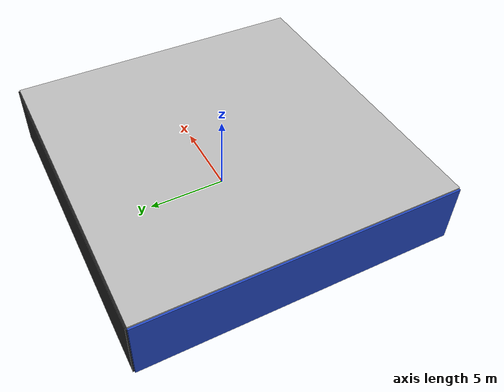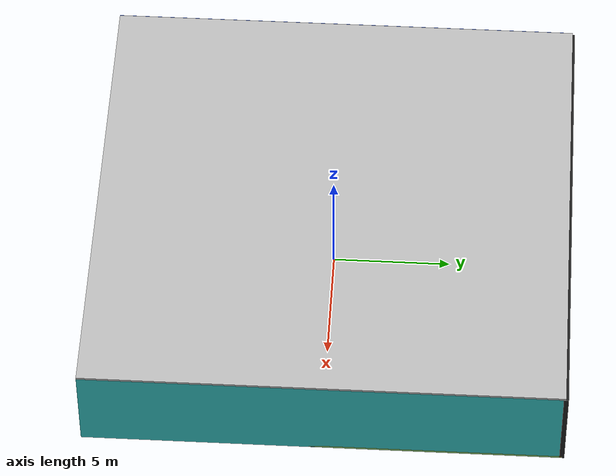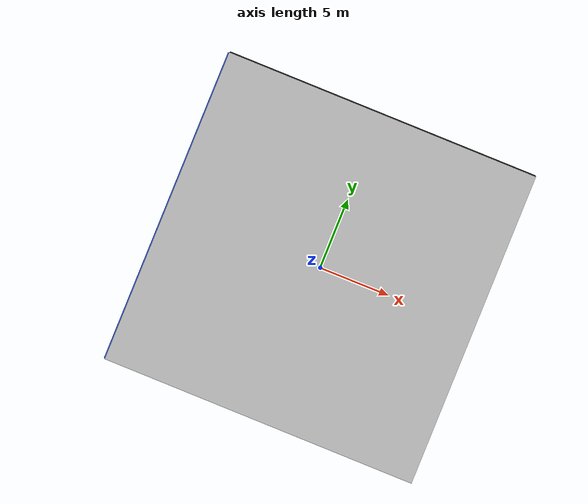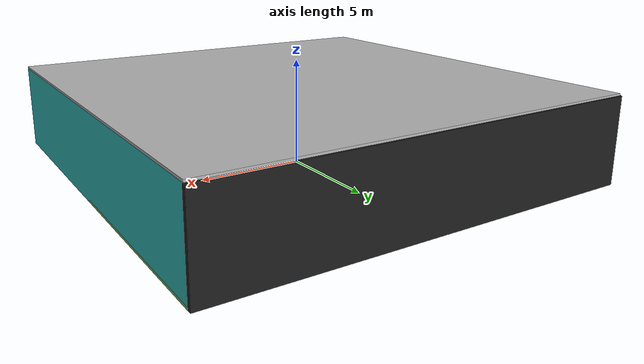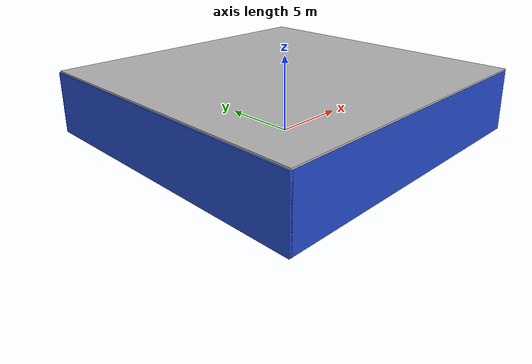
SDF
<sdf version="1.4">
 <world name="default">
  <physics type="ode">
   <max_step_size>0.001</max_step_size>
   <real_time_factor>1</real_time_factor>
   <real_time_update_rate>1000</real_time_update_rate>
   <gravity>0 0 -9.8</gravity>
  </physics>
  <scene><ambient>0.4 0.4 0.4 1</ambient><background>0.7 0.7 0.7 1</background><shadows>1</shadows></scene>
  <model name="Surrounding">
   <static>1</static>
   <link name="Ceiling">
    <collision name="Ceiling_Collision"><geometry><box><size>20 20 0.1</size></box></geometry></collision>
    <visual name="Ceiling_Visual">
     <geometry><box><size>20 20 0.1</size></box></geometry>
     <material>
      <script><uri>file://media/materials/scripts/gazebo.material</uri><name>Gazebo/LightOff</name></script>
     </material>
    </visual>
    <pose>0 0 4.05 0 0 0</pose>
   </link>
   <link name="Wall_South">
    <collision name="Wall_South_Collision">
     <geometry><box><size>20 0 4</size></box></geometry>
     <pose>0 0 2 0 -0 0</pose>
    </collision>
    <visual name="Wall_South_Visual">
     <pose>0 0 2 0 -0 0</pose>
     <geometry><box><size>20 0 4</size></box></geometry>
     <material>
      <script><uri>file://media/materials/scripts/gazebo.material</uri><name>Gazebo/BlueGlow</name></script>
     </material>
    </visual>
    <velocity_decay><linear>0</linear><angular>0</angular></velocity_decay>
    <pose>0 -10 0 0 -0 0</pose>
   </link>
   <link name="Wall_East">
    <collision name="Wall_21_Collision">
     <geometry><box><size>20 0 4</size></box></geometry>
     <pose>0 0 2 0 -0 0</pose>
    </collision>
    <visual name="Wall_21_Visual">
     <pose>0 0 2 0 -0 0</pose>
     <geometry><box><size>20 0 4</size></box></geometry>
     <material>
      <script>
       <uri>file://media/materials/scripts/gazebo.material</uri>
       <name>Gazebo/TurquoiseGlowOutline</name>
      </script>
     </material>
    </visual>
    <velocity_decay><linear>0</linear><angular>0</angular></velocity_decay>
    <pose>10 0 0 0 -0 1.5708</pose>
   </link>
   <link name="Wall_North">
    <collision name="Wall_22_Collision">
     <geometry><box><size>20 0.2 4</size></box></geometry>
     <pose>0 0 2 0 -0 0</pose>
    </collision>
    <visual name="Wall_22_Visual">
     <pose>0 0 2 0 -0 0</pose>
     <geometry><box><size>20 0.2 4</size></box></geometry>
     <material>
      <script><uri>file://media/materials/scripts/gazebo.material</uri><name>Gazebo/FlatBlack</name></script>
     </material>
    </visual>
    <velocity_decay><linear>0</linear><angular>0</angular></velocity_decay>
    <pose>0 10 0 0 -0 0</pose>
   </link>
   <link name="Wall_West">
    <collision name="Wall_23_Collision">
     <geometry><box><size>20 0.2 4</size></box></geometry>
     <pose>0 0 2 0 -0 0</pose>
    </collision>
    <visual name="Wall_23_Visual">
     <pose>0 0 2 0 -0 0</pose>
     <geometry><box><size>20 0.2 4</size></box></geometry>
     <material>
      <script><uri>file://media/materials/scripts/gazebo.material</uri><name>Gazebo/BlueGlow</name></script>
     </material>
    </visual>
    <velocity_decay><linear>0</linear><angular>0</angular></velocity_decay>
    <pose>-10 0 0 0 0 -1.5708</pose>
   </link>
   <link name="Ground_link">
    <collision name="collision">
     <pose>0 0 .05 0 -0 0</pose>
     <geometry><box><size>20 20 0.1</size></box></geometry>
    </collision>
    <visual name="visual">
     <pose>0 0 .05 0 -0 0</pose>
     <geometry><box><size>20 20 0.1</size></box></geometry>
     <material>
      <script>
       <uri>file://media/materials/scripts/gazebo.material</uri>
       <name>Gazebo/YellowTransparent</name>
      </script>
     </material>
    </visual>
   </link>
   <static>1</static>
  </model>
  <spherical_coordinates>
   <surface_model>EARTH_WGS84</surface_model>
   <latitude_deg>0</latitude_deg>
   <longitude_deg>0</longitude_deg>
   <elevation>0</elevation>
   <heading_deg>0</heading_deg>
  </spherical_coordinates>
  <light name="lightball_0" type="diffuse">
   <diffuse>0.8 0.8 0.8 1</diffuse>
   <specular>0.2 0.2 0.2 1</specular>
   <attenuation>
    <range>100</range>
    <constant>0.7</constant>
    <linear>0.01</linear>
    <quadratic>0.001</quadratic>
   </attenuation>
   <direction>-0.5 0.1 -0.9</direction>
   <pose>7.54568568409 6.89572495631 3.35121479193 0 0 0</pose>
  </light>
  <light name="lightball_1" type="diffuse">
   <diffuse>0.8 0.8 0.8 1</diffuse>
   <specular>0.2 0.2 0.2 1</specular>
   <attenuation>
    <range>100</range>
    <constant>0.7</constant>
    <linear>0.01</linear>
    <quadratic>0.001</quadratic>
   </attenuation>
   <direction>-0.5 0.1 -0.9</direction>
   <pose>2.89347564351 -5.69020024793 2.23682096653 0 0 0</pose>
  </light>
  <light name="lightball_2" type="diffuse">
   <diffuse>0.8 0.8 0.8 1</diffuse>
   <specular>0.2 0.2 0.2 1</specular>
   <attenuation>
    <range>100</range>
    <constant>0.7</constant>
    <linear>0.01</linear>
    <quadratic>0.001</quadratic>
   </attenuation>
   <direction>-0.5 0.1 -0.9</direction>
   <pose>0.362333547101 8.89949564442 0.824017905479 0 0 0</pose>
  </light>
  <include>
   <uri>model://textured_shapes</uri>
   <pose>-1.79151896057 -8.29691427055 0 0 0 1.37422082159</pose>
  </include>
  <include><uri>model://cabinet</uri><pose>0.850670791475 0.870964793746 0 0 0 2.95221853948</pose></include>
  <include>
   <uri>model://textured_shapes</uri>
   <pose>2.10649116618 4.84736383541 0 0 0 1.8970433559</pose>
  </include>
  <include>
   <uri>model://construction_cone</uri>
   <pose>1.90225876561 7.49639040677 0 0 0 0.433453325296</pose>
  </include>
  <include><uri>model://table</uri><pose>3.79266085354 4.85158311637 0 0 0 2.27579455369</pose></include>
 </world>
</sdf>

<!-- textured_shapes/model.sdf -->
<sdf version="1.6">
  <model name="textured_shapes">
    <pose>0 0 0.5 0 0 0</pose>
    <link name="box">
      <pose>0 -1.5 0 0 0 0</pose>
      <collision name="collision">
        <geometry>
          <box>
            <size>1 1 1</size>
          </box>
        </geometry>
      </collision>
      <visual name="visual">
        <geometry>
          <box>
            <size>1 1 1</size>
          </box>
        </geometry>
        <material>
          <script>
            <uri>model://../model_source/models/textured_shapes/materials/scripts</uri>
            <uri>model://../model_source/models/textured_shapes/materials/textures</uri>
            <name>TexturedShape/Squares</name>
          </script>
        </material>
      </visual>
    </link>
    <link name="sphere">
      <collision name="collision">
        <geometry>
          <sphere>
            <radius>0.5</radius>
          </sphere>
        </geometry>
      </collision>
      <visual name="visual">
        <geometry>
          <sphere>
            <radius>0.5</radius>
          </sphere>
        </geometry>
        <material>
          <script>
            <uri>model://../model_source/models/textured_shapes/materials/scripts</uri>
            <uri>model://../model_source/models/textured_shapes/materials/textures</uri>
            <name>TexturedShape/Squares</name>
          </script>
        </material>
      </visual>
    </link>
    <link name="cylinder">
      <pose>0 1.5 0 0 0 0</pose>
      <collision name="collision">
        <geometry>
          <cylinder>
            <radius>0.5</radius>
            <length>1</length>
          </cylinder>
        </geometry>
      </collision>
      <visual name="visual">
        <geometry>
          <cylinder>
            <radius>0.5</radius>
            <length>1</length>
          </cylinder>
        </geometry>
        <material>
          <script>
            <uri>model://../model_source/models/textured_shapes/materials/scripts</uri>
            <uri>model://../model_source/models/textured_shapes/materials/textures</uri>
            <name>TexturedShape/Squares</name>
          </script>
        </material>
      </visual>
    </link>
  </model>
</sdf>

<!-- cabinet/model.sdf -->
<sdf version="1.5">
  <model name="cabinet">
    <static>true</static>
    <link name="cabinet_bottom_plate">
      <inertial>
        <pose>0 0 -1 0 0 0</pose>
        <inertia>
          <ixx>2.050000</ixx>
          <ixy>0</ixy>
          <ixz>0</ixz>
          <iyy>2.050000</iyy>
          <iyz>0</iyz>
          <izz>2.050000</izz>
        </inertia>
        <mass>25.000000</mass>
      </inertial>
      <collision name="cabinet_bottom_plate_geom">
        <pose>0 0 0.010000 0 0 0</pose>
        <geometry>
          <box>
            <size>0.450000 0.450000 0.020000</size>
          </box>
        </geometry>
      </collision>
      <visual name="cabinet_bottom_plate_geom_visual">
        <pose>0 0 0.010000 0 0 0</pose>
        <geometry>
          <box>
            <size>0.450000 0.450000 0.020000</size>
          </box>
        </geometry>
        <material>
          <script>
            <uri>model://media/materials/scripts/gazebo.material</uri>
            <name>Gazebo/Wood</name>
          </script>
        </material>
      </visual>
      <collision name="cabinet_bottom_plate_geom_cabinet_back_plate">
        <pose>0.235000 0 0.510000 0 0 0</pose>
        <geometry>
          <box>
            <size>0.020000 0.450000 1.020000</size>
          </box>
        </geometry>
      </collision>
      <visual name="cabinet_bottom_plate_geom_cabinet_back_plate_visual">
        <pose>0.235000 0 0.510000 0 0 0</pose>
        <geometry>
          <box>
            <size>0.020000 0.450000 1.020000</size>
          </box>
        </geometry>
        <material>
          <script>
            <uri>model://media/materials/scripts/gazebo.material</uri>
            <name>Gazebo/Wood</name>
          </script>
        </material>
      </visual>
      <collision name="cabinet_bottom_plate_geom_cabinet_left_plate">
        <pose>0 0.235000 0.510000 0 0 0</pose>
        <geometry>
          <box>
            <size>0.450000 0.020000 1.020000</size>
          </box>
        </geometry>
      </collision>
      <visual name="cabinet_bottom_plate_geom_cabinet_left_plate_visual">
        <pose>0 0.235000 0.510000 0 0 0</pose>
        <geometry>
          <box>
            <size>0.450000 0.020000 1.020000</size>
          </box>
        </geometry>
        <material>
          <script>
            <uri>model://media/materials/scripts/gazebo.material</uri>
            <name>Gazebo/Wood</name>
          </script>
        </material>
      </visual>
      <collision name="cabinet_bottom_plate_geom_cabinet_middle_plate">
        <pose>0 0 0.510000 0 0 0</pose>
        <geometry>
          <box>
            <size>0.450000 0.450000 0.020000</size>
          </box>
        </geometry>
      </collision>
      <visual name="cabinet_bottom_plate_geom_cabinet_middle_plate_visual">
        <pose>0 0 0.510000 0 0 0</pose>
        <geometry>
          <box>
            <size>0.450000 0.450000 0.020000</size>
          </box>
        </geometry>
        <material>
          <script>
            <uri>model://media/materials/scripts/gazebo.material</uri>
            <name>Gazebo/Wood</name>
          </script>
        </material>
      </visual>
      <collision name="cabinet_bottom_plate_geom_cabinet_right_plate">
        <pose>0 -0.235000 0.510000 0 0 0</pose>
        <geometry>
          <box>
            <size>0.450000 0.020000 1.020000</size>
          </box>
        </geometry>
      </collision>
      <visual name="cabinet_bottom_plate_geom_cabinet_right_plate_visual">
        <pose>0 -0.235000 0.510000 0 0 0</pose>
        <geometry>
          <box>
            <size>0.450000 0.020000 1.020000</size>
          </box>
        </geometry>
        <material>
          <script>
            <uri>model://media/materials/scripts/gazebo.material</uri>
            <name>Gazebo/Wood</name>
          </script>
        </material>
      </visual>
      <collision name="cabinet_bottom_plate_geom_cabinet_top_plate">
        <pose>0 0 1.010000 0 0 0</pose>
        <geometry>
          <box>
            <size>0.450000 0.450000 0.020000</size>
          </box>
        </geometry>
      </collision>
      <visual name="cabinet_bottom_plate_geom_cabinet_top_plate_visual">
        <pose>0 0 1.010000 0 0 0</pose>
        <geometry>
          <box>
            <size>0.450000 0.450000 0.020000</size>
          </box>
        </geometry>
        <material>
          <script>
            <uri>model://media/materials/scripts/gazebo.material</uri>
            <name>Gazebo/Wood</name>
          </script>
        </material>
      </visual>
    </link>
  </model>
</sdf>

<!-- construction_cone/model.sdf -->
<sdf version="1.5">
  <model name="Construction Cone">
    <link name="link">
      <collision name="collision">
        <geometry>
          <mesh>
            <scale>10 10 10</scale>
            <uri>file://isr-testbed/construction_cone/meshes/construction_cone.dae</uri>
          </mesh>
        </geometry>
      </collision>
      <visual name="visual">
        <geometry>
          <mesh>
            <scale>10 10 10</scale>
            <uri>file://isr-testbed/construction_cone/meshes/construction_cone.dae</uri>
          </mesh>
        </geometry>
      </visual>
    </link>
  </model>
</sdf>

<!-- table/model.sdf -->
<sdf version="1.5">
  <model name="table">
    <static>true</static>
    <link name="link">
      <collision name="surface">
        <pose>0 0 1.0 0 0 0</pose>
        <geometry>
          <box>
            <size>1.5 0.8 0.03</size>
          </box>
        </geometry>
        <surface>
          <friction>
            <ode>
              <mu>0.6</mu>
              <mu2>0.6</mu2>
            </ode>
          </friction>
        </surface>
      </collision>
      <visual name="visual1">
        <pose>0 0 1.0 0 0 0</pose>
        <geometry>
          <box>
            <size>1.5 0.8 0.03</size>
          </box>
        </geometry>
        <material>
          <script>
            <uri>model://media/materials/scripts/gazebo.material</uri>
            <name>Gazebo/Wood</name>
          </script>
        </material>
      </visual>
      <collision name="front_left_leg">
        <pose>0.68 0.38 0.5 0 0 0</pose>
        <geometry>
          <cylinder>
            <radius>0.02</radius>
            <length>1.0</length>
          </cylinder>
        </geometry>
      </collision>
      <visual name="front_left_leg">
        <pose>0.68 0.38 0.5 0 0 0</pose>
        <geometry>
          <cylinder>
            <radius>0.02</radius>
            <length>1.0</length>
          </cylinder>
        </geometry>
        <material>
          <script>
            <uri>model://media/materials/scripts/gazebo.material</uri>
            <name>Gazebo/Grey</name>
          </script>
        </material>
      </visual>
      <collision name="front_right_leg">
        <pose>0.68 -0.38 0.5 0 0 0</pose>
        <geometry>
          <cylinder>
            <radius>0.02</radius>
            <length>1.0</length>
          </cylinder>
        </geometry>
      </collision>
      <visual name="front_right_leg">
        <pose>0.68 -0.38 0.5 0 0 0</pose>
        <geometry>
          <cylinder>
            <radius>0.02</radius>
            <length>1.0</length>
          </cylinder>
        </geometry>
        <material>
          <script>
            <uri>model://media/materials/scripts/gazebo.material</uri>
            <name>Gazebo/Grey</name>
          </script>
        </material>
      </visual>
      <collision name="back_right_leg">
        <pose>-0.68 -0.38 0.5 0 0 0</pose>
        <geometry>
          <cylinder>
            <radius>0.02</radius>
            <length>1.0</length>
          </cylinder>
        </geometry>
      </collision>
      <visual name="back_right_leg">
        <pose>-0.68 -0.38 0.5 0 0 0</pose>
        <geometry>
          <cylinder>
            <radius>0.02</radius>
            <length>1.0</length>
          </cylinder>
        </geometry>
        <material>
          <script>
            <uri>model://media/materials/scripts/gazebo.material</uri>
            <name>Gazebo/Grey</name>
          </script>
        </material>
      </visual>
      <collision name="back_left_leg">
        <pose>-0.68 0.38 0.5 0 0 0</pose>
        <geometry>
          <cylinder>
            <radius>0.02</radius>
            <length>1.0</length>
          </cylinder>
        </geometry>
      </collision>
      <visual name="back_left_leg">
        <pose>-0.68 0.38 0.5 0 0 0</pose>
        <geometry>
          <cylinder>
            <radius>0.02</radius>
            <length>1.0</length>
          </cylinder>
        </geometry>
        <material>
          <script>
            <uri>model://media/materials/scripts/gazebo.material</uri>
            <name>Gazebo/Grey</name>
          </script>
        </material>
      </visual>
    </link>
  </model>
</sdf>
